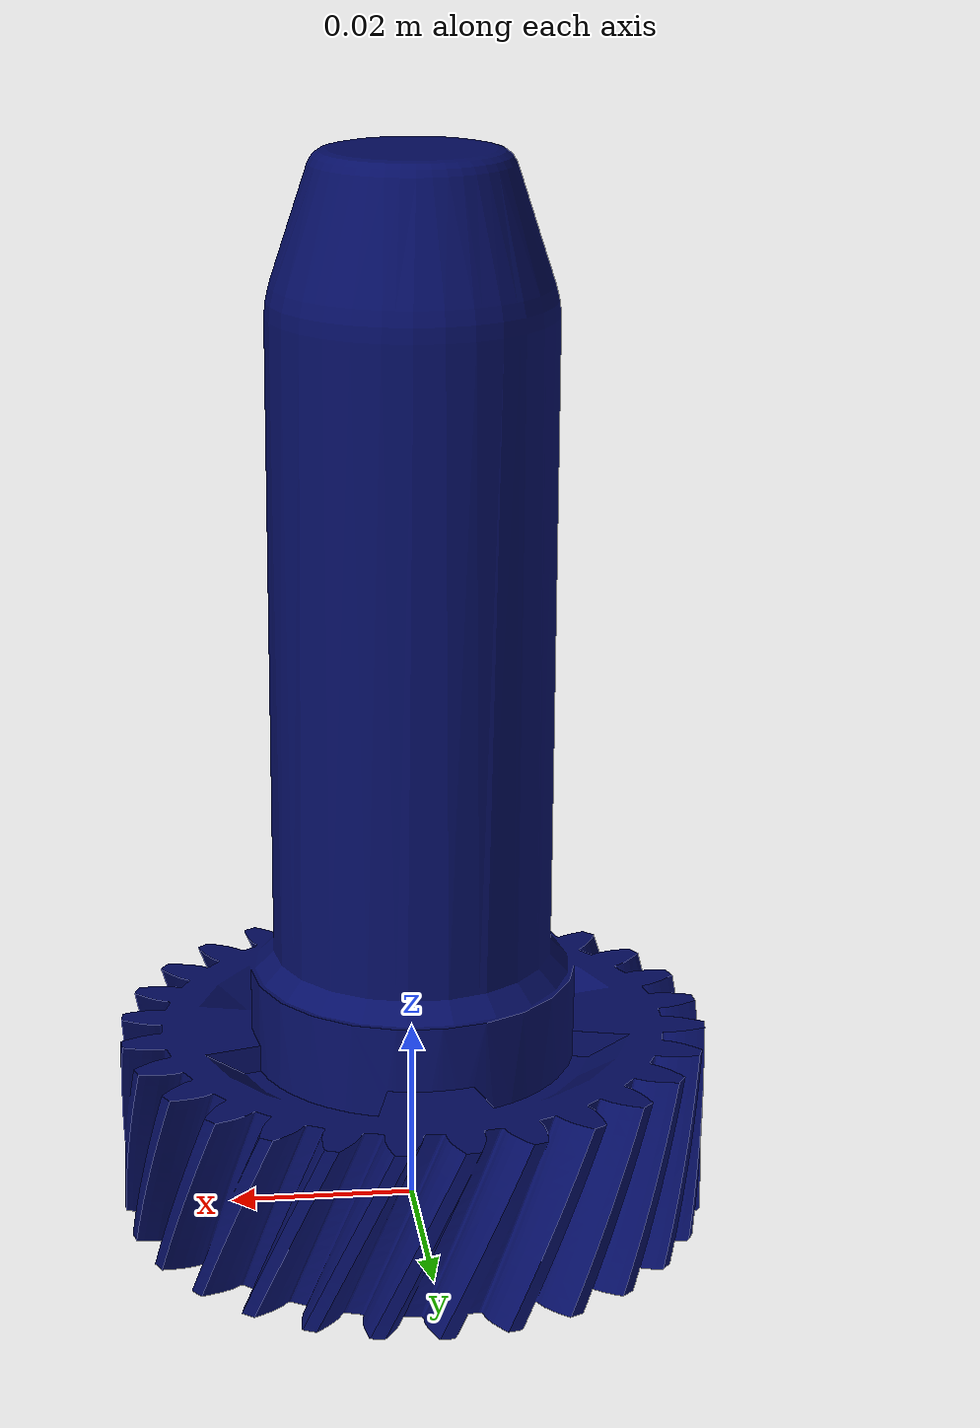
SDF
<?xml version="1.0" ?>
<sdf version='1.4'>
  <model name="gearbox_largegear_blue">
      <static>0</static>
      <link name='link'>
        <inertial>
          <pose>0 0 0.057592 0 0 0</pose>
          <mass>0.2380243</mass>
          <inertia>
            <ixx>0.000343121171301</ixx>
            <ixy>0.000000</ixy>
            <ixz>0.000000</ixz>
            <iyy>0.000343121171301</iyy>
            <iyz>0.000000</iyz>
            <izz>0.000159916906863</izz>
          </inertia>
        </inertial>
        <collision name='collision'>
          <geometry>
            <mesh>
              <uri>model://gearbox_largegear_blue/meshes/largeGear_v5.stl</uri>
              <scale>1 1 1</scale>
            </mesh>
          </geometry>
          <surface>
            <friction>
              <ode>
                <mu>30.0</mu>
                <mu2>30.0</mu2>
              </ode>
            </friction>
            <contact>
              <ode>
                <soft_cfm>0</soft_cfm>
    	          <soft_erp>0.2</soft_erp>
    	          <kp>1e+13</kp>
    	          <kd>1</kd>
    	          <max_vel>0.01</max_vel>
    	          <min_depth>0</min_depth>
              </ode>
            </contact>
          </surface>
        </collision>
        <visual name='visual'>
          <geometry>
            <mesh>
              <uri>model://gearbox_largegear_blue/meshes/largeGear_blue.dae</uri>
              <scale>1 1 1</scale>
            </mesh>
          </geometry>
        </visual>
        <velocity_decay>
          <linear>0.000000</linear>
          <angular>0.000000</angular>
        </velocity_decay>
        <self_collide>0</self_collide>
        <kinematic>0</kinematic>
        <gravity>1</gravity>
      </link>
  </model>
</sdf>
